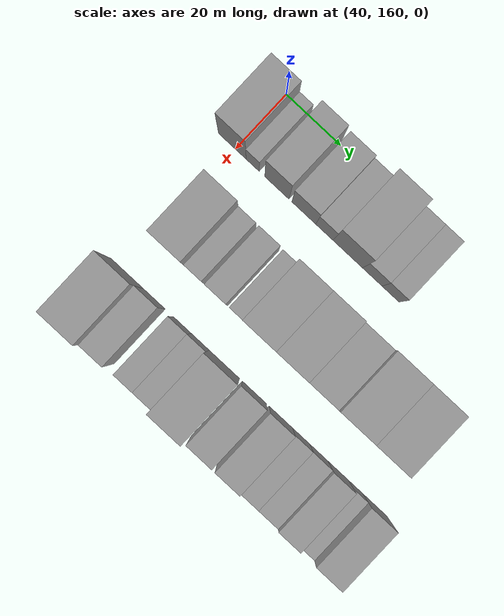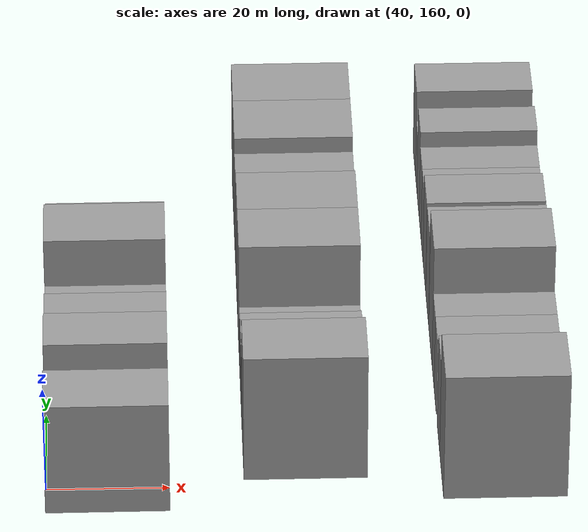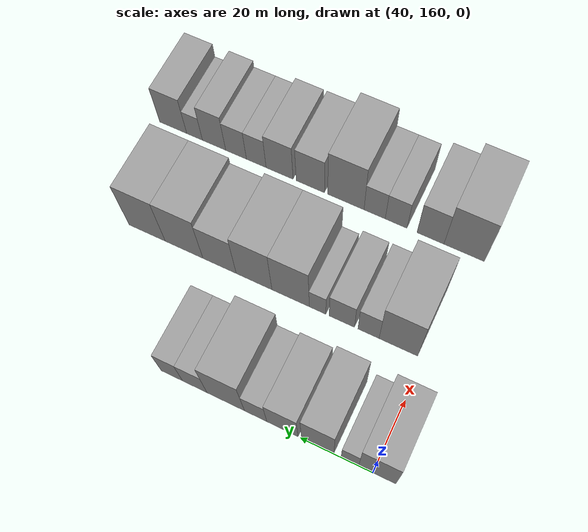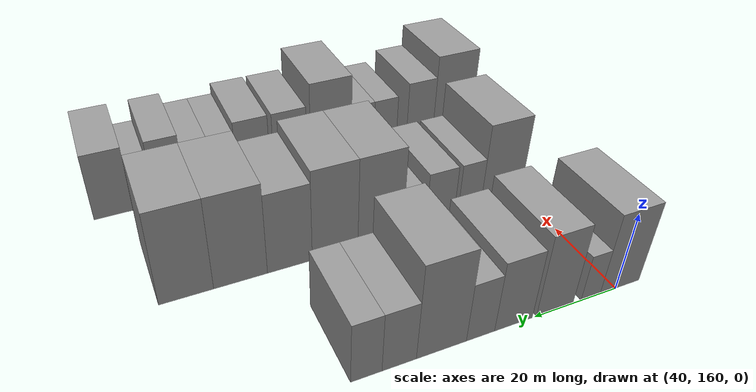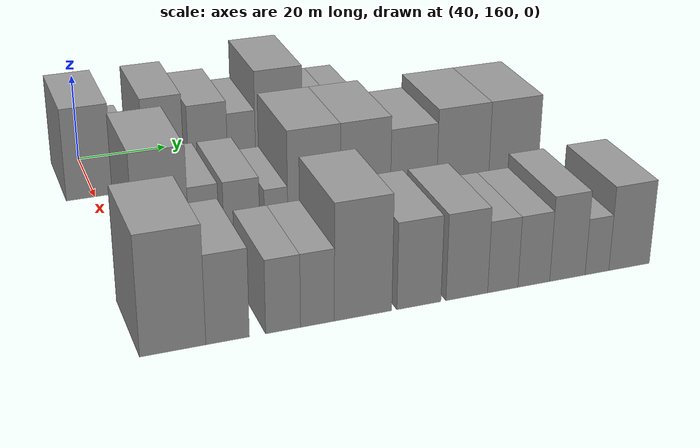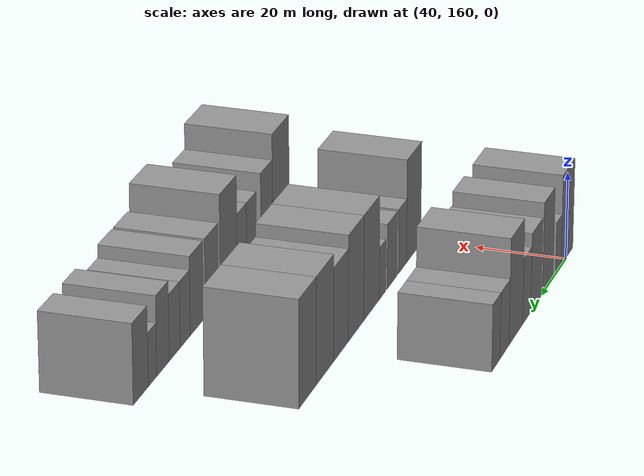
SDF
<sdf version="1.6">
 <world name="default">
  <model name="building_59">
   <static>1</static>
   <pose>50.0000 158.9098 0 0.000000 0.000000 0.000000</pose>
   <link name="link">
    <pose>0 0 10.50 0 0 0</pose>
    <collision name="collision"><geometry><box><size>20.0000 10.0654 21.0000</size></box></geometry></collision>
    <visual name="visual">
     <cast_shadows>0</cast_shadows>
     <geometry><box><size>20.0000 10.0654 21.0000</size></box></geometry>
     <material>
      <script>
       <uri>model://grey_wall/materials/scripts</uri>
       <uri>model://grey_wall/materials/textures</uri>
       <name>vrc/grey_wall</name>
      </script>
     </material>
    </visual>
   </link>
  </model>
  <model name="building_60">
   <static>1</static>
   <pose>50.0000 166.3435 0 0.000000 0.000000 0.000000</pose>
   <link name="link">
    <pose>0 0 6.00 0 0 0</pose>
    <collision name="collision"><geometry><box><size>20.0000 4.8020 12.0000</size></box></geometry></collision>
    <visual name="visual">
     <cast_shadows>0</cast_shadows>
     <geometry><box><size>20.0000 4.8020 12.0000</size></box></geometry>
     <material>
      <script>
       <uri>model://grey_wall/materials/scripts</uri>
       <uri>model://grey_wall/materials/textures</uri>
       <name>vrc/grey_wall</name>
      </script>
     </material>
    </visual>
   </link>
  </model>
  <model name="building_61">
   <static>1</static>
   <pose>50.0000 175.1790 0 0.000000 0.000000 0.000000</pose>
   <link name="link">
    <pose>0 0 10.50 0 0 0</pose>
    <collision name="collision"><geometry><box><size>20.0000 8.8691 21.0000</size></box></geometry></collision>
    <visual name="visual">
     <cast_shadows>0</cast_shadows>
     <geometry><box><size>20.0000 8.8691 21.0000</size></box></geometry>
     <material>
      <script>
       <uri>model://grey_wall/materials/scripts</uri>
       <uri>model://grey_wall/materials/textures</uri>
       <name>vrc/grey_wall</name>
      </script>
     </material>
    </visual>
   </link>
  </model>
  <model name="building_62">
   <static>1</static>
   <pose>50.0000 184.9909 0 0.000000 0.000000 0.000000</pose>
   <link name="link">
    <pose>0 0 9.00 0 0 0</pose>
    <collision name="collision"><geometry><box><size>20.0000 8.7547 18.0000</size></box></geometry></collision>
    <visual name="visual">
     <cast_shadows>0</cast_shadows>
     <geometry><box><size>20.0000 8.7547 18.0000</size></box></geometry>
     <material>
      <script>
       <uri>model://grey_wall/materials/scripts</uri>
       <uri>model://grey_wall/materials/textures</uri>
       <name>vrc/grey_wall</name>
      </script>
     </material>
    </visual>
   </link>
  </model>
  <model name="building_63">
   <static>1</static>
   <pose>50.0000 192.5342 0 0.000000 0.000000 0.000000</pose>
   <link name="link">
    <pose>0 0 7.50 0 0 0</pose>
    <collision name="collision"><geometry><box><size>20.0000 6.3318 15.0000</size></box></geometry></collision>
    <visual name="visual">
     <cast_shadows>0</cast_shadows>
     <geometry><box><size>20.0000 6.3318 15.0000</size></box></geometry>
     <material>
      <script>
       <uri>model://grey_wall/materials/scripts</uri>
       <uri>model://grey_wall/materials/textures</uri>
       <name>vrc/grey_wall</name>
      </script>
     </material>
    </visual>
   </link>
  </model>
  <model name="building_64">
   <static>1</static>
   <pose>50.0000 201.0897 0 0.000000 0.000000 0.000000</pose>
   <link name="link">
    <pose>0 0 12.00 0 0 0</pose>
    <collision name="collision"><geometry><box><size>20.0000 10.7792 24.0000</size></box></geometry></collision>
    <visual name="visual">
     <cast_shadows>0</cast_shadows>
     <geometry><box><size>20.0000 10.7792 24.0000</size></box></geometry>
     <material>
      <script>
       <uri>model://grey_wall/materials/scripts</uri>
       <uri>model://grey_wall/materials/textures</uri>
       <name>vrc/grey_wall</name>
      </script>
     </material>
    </visual>
   </link>
  </model>
  <model name="building_65">
   <static>1</static>
   <pose>50.0000 210.0357 0 0.000000 0.000000 0.000000</pose>
   <link name="link">
    <pose>0 0 7.50 0 0 0</pose>
    <collision name="collision"><geometry><box><size>20.0000 7.1128 15.0000</size></box></geometry></collision>
    <visual name="visual">
     <cast_shadows>0</cast_shadows>
     <geometry><box><size>20.0000 7.1128 15.0000</size></box></geometry>
     <material>
      <script>
       <uri>model://grey_wall/materials/scripts</uri>
       <uri>model://grey_wall/materials/textures</uri>
       <name>vrc/grey_wall</name>
      </script>
     </material>
    </visual>
   </link>
  </model>
  <model name="building_66">
   <static>1</static>
   <pose>50.0000 216.7397 0 0.000000 0.000000 0.000000</pose>
   <link name="link">
    <pose>0 0 7.50 0 0 0</pose>
    <collision name="collision"><geometry><box><size>20.0000 6.2953 15.0000</size></box></geometry></collision>
    <visual name="visual">
     <cast_shadows>0</cast_shadows>
     <geometry><box><size>20.0000 6.2953 15.0000</size></box></geometry>
     <material>
      <script>
       <uri>model://grey_wall/materials/scripts</uri>
       <uri>model://grey_wall/materials/textures</uri>
       <name>vrc/grey_wall</name>
      </script>
     </material>
    </visual>
   </link>
  </model>
  <model name="building_137">
   <static>1</static>
   <pose>82.0000 167.1859 0 0.000000 0.000000 0.000000</pose>
   <link name="link">
    <pose>0 0 12.00 0 0 0</pose>
    <collision name="collision"><geometry><box><size>20.0000 10.9982 24.0000</size></box></geometry></collision>
    <visual name="visual">
     <cast_shadows>0</cast_shadows>
     <geometry><box><size>20.0000 10.9982 24.0000</size></box></geometry>
     <material>
      <script>
       <uri>model://grey_wall/materials/scripts</uri>
       <uri>model://grey_wall/materials/textures</uri>
       <name>vrc/grey_wall</name>
      </script>
     </material>
    </visual>
   </link>
  </model>
  <model name="building_138">
   <static>1</static>
   <pose>82.0000 175.7157 0 0.000000 0.000000 0.000000</pose>
   <link name="link">
    <pose>0 0 7.50 0 0 0</pose>
    <collision name="collision"><geometry><box><size>20.0000 6.0614 15.0000</size></box></geometry></collision>
    <visual name="visual">
     <cast_shadows>0</cast_shadows>
     <geometry><box><size>20.0000 6.0614 15.0000</size></box></geometry>
     <material>
      <script>
       <uri>model://grey_wall/materials/scripts</uri>
       <uri>model://grey_wall/materials/textures</uri>
       <name>vrc/grey_wall</name>
      </script>
     </material>
    </visual>
   </link>
  </model>
  <model name="building_139">
   <static>1</static>
   <pose>82.0000 183.4173 0 0.000000 0.000000 0.000000</pose>
   <link name="link">
    <pose>0 0 7.50 0 0 0</pose>
    <collision name="collision"><geometry><box><size>20.0000 7.3418 15.0000</size></box></geometry></collision>
    <visual name="visual">
     <cast_shadows>0</cast_shadows>
     <geometry><box><size>20.0000 7.3418 15.0000</size></box></geometry>
     <material>
      <script>
       <uri>model://grey_wall/materials/scripts</uri>
       <uri>model://grey_wall/materials/textures</uri>
       <name>vrc/grey_wall</name>
      </script>
     </material>
    </visual>
   </link>
  </model>
  <model name="building_140">
   <static>1</static>
   <pose>82.0000 190.5098 0 0.000000 0.000000 0.000000</pose>
   <link name="link">
    <pose>0 0 6.00 0 0 0</pose>
    <collision name="collision"><geometry><box><size>20.0000 4.8431 12.0000</size></box></geometry></collision>
    <visual name="visual">
     <cast_shadows>0</cast_shadows>
     <geometry><box><size>20.0000 4.8431 12.0000</size></box></geometry>
     <material>
      <script>
       <uri>model://grey_wall/materials/scripts</uri>
       <uri>model://grey_wall/materials/textures</uri>
       <name>vrc/grey_wall</name>
      </script>
     </material>
    </visual>
   </link>
  </model>
  <model name="building_141">
   <static>1</static>
   <pose>82.0000 198.4770 0 0.000000 0.000000 0.000000</pose>
   <link name="link">
    <pose>0 0 12.00 0 0 0</pose>
    <collision name="collision"><geometry><box><size>20.0000 11.0915 24.0000</size></box></geometry></collision>
    <visual name="visual">
     <cast_shadows>0</cast_shadows>
     <geometry><box><size>20.0000 11.0915 24.0000</size></box></geometry>
     <material>
      <script>
       <uri>model://grey_wall/materials/scripts</uri>
       <uri>model://grey_wall/materials/textures</uri>
       <name>vrc/grey_wall</name>
      </script>
     </material>
    </visual>
   </link>
  </model>
  <model name="building_142">
   <static>1</static>
   <pose>82.0000 209.4177 0 0.000000 0.000000 0.000000</pose>
   <link name="link">
    <pose>0 0 12.00 0 0 0</pose>
    <collision name="collision"><geometry><box><size>20.0000 10.7898 24.0000</size></box></geometry></collision>
    <visual name="visual">
     <cast_shadows>0</cast_shadows>
     <geometry><box><size>20.0000 10.7898 24.0000</size></box></geometry>
     <material>
      <script>
       <uri>model://grey_wall/materials/scripts</uri>
       <uri>model://grey_wall/materials/textures</uri>
       <name>vrc/grey_wall</name>
      </script>
     </material>
    </visual>
   </link>
  </model>
  <model name="building_143">
   <static>1</static>
   <pose>82.0000 219.8972 0 0.000000 0.000000 0.000000</pose>
   <link name="link">
    <pose>0 0 10.50 0 0 0</pose>
    <collision name="collision"><geometry><box><size>20.0000 10.1693 21.0000</size></box></geometry></collision>
    <visual name="visual">
     <cast_shadows>0</cast_shadows>
     <geometry><box><size>20.0000 10.1693 21.0000</size></box></geometry>
     <material>
      <script>
       <uri>model://grey_wall/materials/scripts</uri>
       <uri>model://grey_wall/materials/textures</uri>
       <name>vrc/grey_wall</name>
      </script>
     </material>
    </visual>
   </link>
  </model>
  <model name="building_144">
   <static>1</static>
   <pose>82.0000 230.8302 0 0.000000 0.000000 0.000000</pose>
   <link name="link">
    <pose>0 0 12.00 0 0 0</pose>
    <collision name="collision"><geometry><box><size>20.0000 11.6968 24.0000</size></box></geometry></collision>
    <visual name="visual">
     <cast_shadows>0</cast_shadows>
     <geometry><box><size>20.0000 11.6968 24.0000</size></box></geometry>
     <material>
      <script>
       <uri>model://grey_wall/materials/scripts</uri>
       <uri>model://grey_wall/materials/textures</uri>
       <name>vrc/grey_wall</name>
      </script>
     </material>
    </visual>
   </link>
  </model>
  <model name="building_145">
   <static>1</static>
   <pose>82.0000 242.3805 0 0.000000 0.000000 0.000000</pose>
   <link name="link">
    <pose>0 0 12.00 0 0 0</pose>
    <collision name="collision"><geometry><box><size>20.0000 11.4036 24.0000</size></box></geometry></collision>
    <visual name="visual">
     <cast_shadows>0</cast_shadows>
     <geometry><box><size>20.0000 11.4036 24.0000</size></box></geometry>
     <material>
      <script>
       <uri>model://grey_wall/materials/scripts</uri>
       <uri>model://grey_wall/materials/textures</uri>
       <name>vrc/grey_wall</name>
      </script>
     </material>
    </visual>
   </link>
  </model>
  <model name="building_208">
   <static>1</static>
   <pose>114.0000 161.6183 0 0.000000 0.000000 0.000000</pose>
   <link name="link">
    <pose>0 0 12.00 0 0 0</pose>
    <collision name="collision"><geometry><box><size>20.0000 11.8710 24.0000</size></box></geometry></collision>
    <visual name="visual">
     <cast_shadows>0</cast_shadows>
     <geometry><box><size>20.0000 11.8710 24.0000</size></box></geometry>
     <material>
      <script>
       <uri>model://grey_wall/materials/scripts</uri>
       <uri>model://grey_wall/materials/textures</uri>
       <name>vrc/grey_wall</name>
      </script>
     </material>
    </visual>
   </link>
  </model>
  <model name="building_209">
   <static>1</static>
   <pose>114.0000 171.5466 0 0.000000 0.000000 0.000000</pose>
   <link name="link">
    <pose>0 0 9.00 0 0 0</pose>
    <collision name="collision"><geometry><box><size>20.0000 7.9855 18.0000</size></box></geometry></collision>
    <visual name="visual">
     <cast_shadows>0</cast_shadows>
     <geometry><box><size>20.0000 7.9855 18.0000</size></box></geometry>
     <material>
      <script>
       <uri>model://grey_wall/materials/scripts</uri>
       <uri>model://grey_wall/materials/textures</uri>
       <name>vrc/grey_wall</name>
      </script>
     </material>
    </visual>
   </link>
  </model>
  <model name="building_210">
   <static>1</static>
   <pose>114.0000 181.8092 0 0.000000 0.000000 0.000000</pose>
   <link name="link">
    <pose>0 0 7.50 0 0 0</pose>
    <collision name="collision"><geometry><box><size>20.0000 6.5398 15.0000</size></box></geometry></collision>
    <visual name="visual">
     <cast_shadows>0</cast_shadows>
     <geometry><box><size>20.0000 6.5398 15.0000</size></box></geometry>
     <material>
      <script>
       <uri>model://grey_wall/materials/scripts</uri>
       <uri>model://grey_wall/materials/textures</uri>
       <name>vrc/grey_wall</name>
      </script>
     </material>
    </visual>
   </link>
  </model>
  <model name="building_211">
   <static>1</static>
   <pose>114.0000 188.3021 0 0.000000 0.000000 0.000000</pose>
   <link name="link">
    <pose>0 0 7.50 0 0 0</pose>
    <collision name="collision"><geometry><box><size>20.0000 6.4460 15.0000</size></box></geometry></collision>
    <visual name="visual">
     <cast_shadows>0</cast_shadows>
     <geometry><box><size>20.0000 6.4460 15.0000</size></box></geometry>
     <material>
      <script>
       <uri>model://grey_wall/materials/scripts</uri>
       <uri>model://grey_wall/materials/textures</uri>
       <name>vrc/grey_wall</name>
      </script>
     </material>
    </visual>
   </link>
  </model>
  <model name="building_212">
   <static>1</static>
   <pose>114.0000 197.1057 0 0.000000 0.000000 0.000000</pose>
   <link name="link">
    <pose>0 0 12.00 0 0 0</pose>
    <collision name="collision"><geometry><box><size>20.0000 11.1612 24.0000</size></box></geometry></collision>
    <visual name="visual">
     <cast_shadows>0</cast_shadows>
     <geometry><box><size>20.0000 11.1612 24.0000</size></box></geometry>
     <material>
      <script>
       <uri>model://grey_wall/materials/scripts</uri>
       <uri>model://grey_wall/materials/textures</uri>
       <name>vrc/grey_wall</name>
      </script>
     </material>
    </visual>
   </link>
  </model>
  <model name="building_213">
   <static>1</static>
   <pose>114.0000 208.0787 0 0.000000 0.000000 0.000000</pose>
   <link name="link">
    <pose>0 0 9.00 0 0 0</pose>
    <collision name="collision"><geometry><box><size>20.0000 8.7847 18.0000</size></box></geometry></collision>
    <visual name="visual">
     <cast_shadows>0</cast_shadows>
     <geometry><box><size>20.0000 8.7847 18.0000</size></box></geometry>
     <material>
      <script>
       <uri>model://grey_wall/materials/scripts</uri>
       <uri>model://grey_wall/materials/textures</uri>
       <name>vrc/grey_wall</name>
      </script>
     </material>
    </visual>
   </link>
  </model>
  <model name="building_214">
   <static>1</static>
   <pose>114.0000 217.7221 0 0.000000 0.000000 0.000000</pose>
   <link name="link">
    <pose>0 0 9.00 0 0 0</pose>
    <collision name="collision"><geometry><box><size>20.0000 8.5021 18.0000</size></box></geometry></collision>
    <visual name="visual">
     <cast_shadows>0</cast_shadows>
     <geometry><box><size>20.0000 8.5021 18.0000</size></box></geometry>
     <material>
      <script>
       <uri>model://grey_wall/materials/scripts</uri>
       <uri>model://grey_wall/materials/textures</uri>
       <name>vrc/grey_wall</name>
      </script>
     </material>
    </visual>
   </link>
  </model>
  <model name="building_215">
   <static>1</static>
   <pose>114.0000 225.1070 0 0.000000 0.000000 0.000000</pose>
   <link name="link">
    <pose>0 0 7.50 0 0 0</pose>
    <collision name="collision"><geometry><box><size>20.0000 6.2676 15.0000</size></box></geometry></collision>
    <visual name="visual">
     <cast_shadows>0</cast_shadows>
     <geometry><box><size>20.0000 6.2676 15.0000</size></box></geometry>
     <material>
      <script>
       <uri>model://grey_wall/materials/scripts</uri>
       <uri>model://grey_wall/materials/textures</uri>
       <name>vrc/grey_wall</name>
      </script>
     </material>
    </visual>
   </link>
  </model>
  <model name="building_216">
   <static>1</static>
   <pose>114.0000 231.5764 0 0.000000 0.000000 0.000000</pose>
   <link name="link">
    <pose>0 0 7.50 0 0 0</pose>
    <collision name="collision"><geometry><box><size>20.0000 6.6713 15.0000</size></box></geometry></collision>
    <visual name="visual">
     <cast_shadows>0</cast_shadows>
     <geometry><box><size>20.0000 6.6713 15.0000</size></box></geometry>
     <material>
      <script>
       <uri>model://grey_wall/materials/scripts</uri>
       <uri>model://grey_wall/materials/textures</uri>
       <name>vrc/grey_wall</name>
      </script>
     </material>
    </visual>
   </link>
  </model>
  <model name="building_217">
   <static>1</static>
   <pose>114.0000 238.6825 0 0.000000 0.000000 0.000000</pose>
   <link name="link">
    <pose>0 0 9.00 0 0 0</pose>
    <collision name="collision"><geometry><box><size>20.0000 7.5409 18.0000</size></box></geometry></collision>
    <visual name="visual">
     <cast_shadows>0</cast_shadows>
     <geometry><box><size>20.0000 7.5409 18.0000</size></box></geometry>
     <material>
      <script>
       <uri>model://grey_wall/materials/scripts</uri>
       <uri>model://grey_wall/materials/textures</uri>
       <name>vrc/grey_wall</name>
      </script>
     </material>
    </visual>
   </link>
  </model>
  <model name="building_218">
   <static>1</static>
   <pose>114.0000 245.0213 0 0.000000 0.000000 0.000000</pose>
   <link name="link">
    <pose>0 0 6.00 0 0 0</pose>
    <collision name="collision"><geometry><box><size>20.0000 5.1367 12.0000</size></box></geometry></collision>
    <visual name="visual">
     <cast_shadows>0</cast_shadows>
     <geometry><box><size>20.0000 5.1367 12.0000</size></box></geometry>
     <material>
      <script>
       <uri>model://grey_wall/materials/scripts</uri>
       <uri>model://grey_wall/materials/textures</uri>
       <name>vrc/grey_wall</name>
      </script>
     </material>
    </visual>
   </link>
  </model>
  <model name="building_219">
   <static>1</static>
   <pose>114.0000 252.0419 0 0.000000 0.000000 0.000000</pose>
   <link name="link">
    <pose>0 0 9.00 0 0 0</pose>
    <collision name="collision"><geometry><box><size>20.0000 8.9045 18.0000</size></box></geometry></collision>
    <visual name="visual">
     <cast_shadows>0</cast_shadows>
     <geometry><box><size>20.0000 8.9045 18.0000</size></box></geometry>
     <material>
      <script>
       <uri>model://grey_wall/materials/scripts</uri>
       <uri>model://grey_wall/materials/textures</uri>
       <name>vrc/grey_wall</name>
      </script>
     </material>
    </visual>
   </link>
  </model>
 </world>
</sdf>
